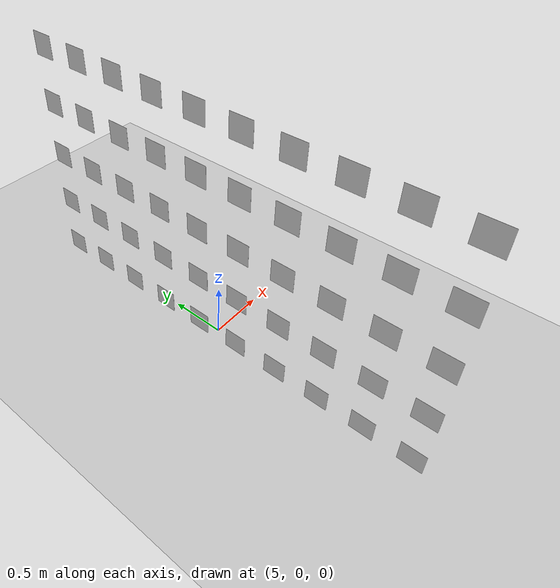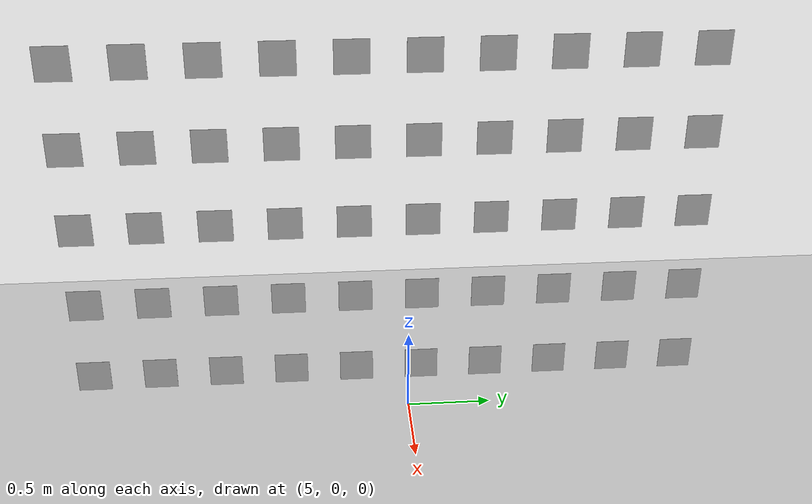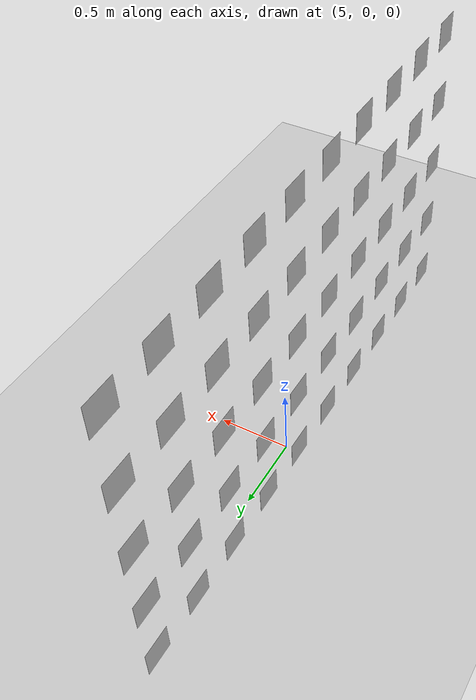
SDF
<sdf version="1.6">
 <world name="default">
  <model name="ground_plane">
   <static>1</static>
   <link name="link">
    <collision name="collision">
     <geometry><plane><normal>0 0 1</normal><size>100 100</size></plane></geometry>
     <surface><friction><ode><mu>100</mu><mu2>50</mu2></ode></friction></surface>
    </collision>
    <visual name="visual">
     <cast_shadows>0</cast_shadows>
     <geometry><plane><normal>0 0 1</normal><size>100 100</size></plane></geometry>
     <material>
      <script><uri>file://media/materials/scripts/gazebo.material</uri><name>Gazebo/Grey</name></script>
     </material>
    </visual>
   </link>
  </model>
  <model name="home1_tag">
   <model name="aruco0">
    <static>1</static>
    <link name="link">
     <pose>0 0 0.1 0 -0 0</pose>
     <collision name="collision"><geometry><box><size>0.2 0.001 0.2</size></box></geometry></collision>
     <visual name="visual">
      <cast_shadows>0</cast_shadows>
      <geometry><box><size>0.2 0.001 0.2</size></box></geometry>
      <material>
       <script>
        <uri>model://aruco0/materials/scripts</uri>
        <uri>model://aruco0/materials/textures</uri>
        <name>vrc/aruco0</name>
       </script>
      </material>
     </visual>
    </link>
    <pose>4.95 -1.8 0.1 0 -0 1.57</pose>
   </model>
   <model name="aruco1">
    <static>1</static>
    <link name="link">
     <pose>0 0 0.1 0 -0 0</pose>
     <collision name="collision"><geometry><box><size>0.2 0.001 0.2</size></box></geometry></collision>
     <visual name="visual">
      <cast_shadows>0</cast_shadows>
      <geometry><box><size>0.2 0.001 0.2</size></box></geometry>
      <material>
       <script>
        <uri>model://aruco1/materials/scripts</uri>
        <uri>model://aruco1/materials/textures</uri>
        <name>vrc/aruco1</name>
       </script>
      </material>
     </visual>
    </link>
    <pose>4.95 -1.4 0.1 0 -0 1.57</pose>
   </model>
   <model name="aruco2">
    <static>1</static>
    <link name="link">
     <pose>0 0 0.1 0 -0 0</pose>
     <collision name="collision"><geometry><box><size>0.2 0.001 0.2</size></box></geometry></collision>
     <visual name="visual">
      <cast_shadows>0</cast_shadows>
      <geometry><box><size>0.2 0.001 0.2</size></box></geometry>
      <material>
       <script>
        <uri>model://aruco2/materials/scripts</uri>
        <uri>model://aruco2/materials/textures</uri>
        <name>vrc/aruco2</name>
       </script>
      </material>
     </visual>
    </link>
    <pose>4.95 -1 0.1 0 -0 1.57</pose>
   </model>
   <model name="aruco3">
    <static>1</static>
    <link name="link">
     <pose>0 0 0.1 0 -0 0</pose>
     <collision name="collision"><geometry><box><size>0.2 0.001 0.2</size></box></geometry></collision>
     <visual name="visual">
      <cast_shadows>0</cast_shadows>
      <geometry><box><size>0.2 0.001 0.2</size></box></geometry>
      <material>
       <script>
        <uri>model://aruco3/materials/scripts</uri>
        <uri>model://aruco3/materials/textures</uri>
        <name>vrc/aruco3</name>
       </script>
      </material>
     </visual>
    </link>
    <pose>4.95 -0.6 0.1 0 -0 1.57</pose>
   </model>
   <model name="aruco4">
    <static>1</static>
    <link name="link">
     <pose>0 0 0.1 0 -0 0</pose>
     <collision name="collision"><geometry><box><size>0.2 0.001 0.2</size></box></geometry></collision>
     <visual name="visual">
      <cast_shadows>0</cast_shadows>
      <geometry><box><size>0.2 0.001 0.2</size></box></geometry>
      <material>
       <script>
        <uri>model://aruco4/materials/scripts</uri>
        <uri>model://aruco4/materials/textures</uri>
        <name>vrc/aruco4</name>
       </script>
      </material>
     </visual>
    </link>
    <pose>4.95 -0.2 0.1 0 -0 1.57</pose>
   </model>
   <model name="aruco5">
    <static>1</static>
    <link name="link">
     <pose>0 0 0.1 0 -0 0</pose>
     <collision name="collision"><geometry><box><size>0.2 0.001 0.2</size></box></geometry></collision>
     <visual name="visual">
      <cast_shadows>0</cast_shadows>
      <geometry><box><size>0.2 0.001 0.2</size></box></geometry>
      <material>
       <script>
        <uri>model://aruco5/materials/scripts</uri>
        <uri>model://aruco5/materials/textures</uri>
        <name>vrc/aruco5</name>
       </script>
      </material>
     </visual>
    </link>
    <pose>4.95 0.2 0.1 0 -0 1.57</pose>
   </model>
   <model name="aruco6">
    <static>1</static>
    <link name="link">
     <pose>0 0 0.1 0 -0 0</pose>
     <collision name="collision"><geometry><box><size>0.2 0.001 0.2</size></box></geometry></collision>
     <visual name="visual">
      <cast_shadows>0</cast_shadows>
      <geometry><box><size>0.2 0.001 0.2</size></box></geometry>
      <material>
       <script>
        <uri>model://aruco6/materials/scripts</uri>
        <uri>model://aruco6/materials/textures</uri>
        <name>vrc/aruco6</name>
       </script>
      </material>
     </visual>
    </link>
    <pose>4.95 0.6 0.1 0 -0 1.57</pose>
   </model>
   <model name="aruco7">
    <static>1</static>
    <link name="link">
     <pose>0 0 0.1 0 -0 0</pose>
     <collision name="collision"><geometry><box><size>0.2 0.001 0.2</size></box></geometry></collision>
     <visual name="visual">
      <cast_shadows>0</cast_shadows>
      <geometry><box><size>0.2 0.001 0.2</size></box></geometry>
      <material>
       <script>
        <uri>model://aruco7/materials/scripts</uri>
        <uri>model://aruco7/materials/textures</uri>
        <name>vrc/aruco7</name>
       </script>
      </material>
     </visual>
    </link>
    <pose>4.95 1 0.1 0 -0 1.57</pose>
   </model>
   <model name="aruco8">
    <static>1</static>
    <link name="link">
     <pose>0 0 0.1 0 -0 0</pose>
     <collision name="collision"><geometry><box><size>0.2 0.001 0.2</size></box></geometry></collision>
     <visual name="visual">
      <cast_shadows>0</cast_shadows>
      <geometry><box><size>0.2 0.001 0.2</size></box></geometry>
      <material>
       <script>
        <uri>model://aruco8/materials/scripts</uri>
        <uri>model://aruco8/materials/textures</uri>
        <name>vrc/aruco8</name>
       </script>
      </material>
     </visual>
    </link>
    <pose>4.95 1.4 0.1 0 -0 1.57</pose>
   </model>
   <model name="aruco9">
    <static>1</static>
    <link name="link">
     <pose>0 0 0.1 0 -0 0</pose>
     <collision name="collision"><geometry><box><size>0.2 0.001 0.2</size></box></geometry></collision>
     <visual name="visual">
      <cast_shadows>0</cast_shadows>
      <geometry><box><size>0.2 0.001 0.2</size></box></geometry>
      <material>
       <script>
        <uri>model://aruco9/materials/scripts</uri>
        <uri>model://aruco9/materials/textures</uri>
        <name>vrc/aruco9</name>
       </script>
      </material>
     </visual>
    </link>
    <pose>4.95 1.8 0.1 0 -0 1.57</pose>
   </model>
   <model name="aruco10">
    <static>1</static>
    <link name="link">
     <pose>0 0 0.1 0 -0 0</pose>
     <collision name="collision"><geometry><box><size>0.2 0.001 0.2</size></box></geometry></collision>
     <visual name="visual">
      <cast_shadows>0</cast_shadows>
      <geometry><box><size>0.2 0.001 0.2</size></box></geometry>
      <material>
       <script>
        <uri>model://aruco10/materials/scripts</uri>
        <uri>model://aruco10/materials/textures</uri>
        <name>vrc/aruco10</name>
       </script>
      </material>
     </visual>
    </link>
    <pose>4.95 -1.8 0.6 0 -0 1.57</pose>
   </model>
   <model name="aruco11">
    <static>1</static>
    <link name="link">
     <pose>0 0 0.1 0 -0 0</pose>
     <collision name="collision"><geometry><box><size>0.2 0.001 0.2</size></box></geometry></collision>
     <visual name="visual">
      <cast_shadows>0</cast_shadows>
      <geometry><box><size>0.2 0.001 0.2</size></box></geometry>
      <material>
       <script>
        <uri>model://aruco11/materials/scripts</uri>
        <uri>model://aruco11/materials/textures</uri>
        <name>vrc/aruco11</name>
       </script>
      </material>
     </visual>
    </link>
    <pose>4.95 -1.4 0.6 0 -0 1.57</pose>
   </model>
   <model name="aruco12">
    <static>1</static>
    <link name="link">
     <pose>0 0 0.1 0 -0 0</pose>
     <collision name="collision"><geometry><box><size>0.2 0.001 0.2</size></box></geometry></collision>
     <visual name="visual">
      <cast_shadows>0</cast_shadows>
      <geometry><box><size>0.2 0.001 0.2</size></box></geometry>
      <material>
       <script>
        <uri>model://aruco12/materials/scripts</uri>
        <uri>model://aruco12/materials/textures</uri>
        <name>vrc/aruco12</name>
       </script>
      </material>
     </visual>
    </link>
    <pose>4.95 -1 0.6 0 -0 1.57</pose>
   </model>
   <model name="aruco13">
    <static>1</static>
    <link name="link">
     <pose>0 0 0.1 0 -0 0</pose>
     <collision name="collision"><geometry><box><size>0.2 0.001 0.2</size></box></geometry></collision>
     <visual name="visual">
      <cast_shadows>0</cast_shadows>
      <geometry><box><size>0.2 0.001 0.2</size></box></geometry>
      <material>
       <script>
        <uri>model://aruco13/materials/scripts</uri>
        <uri>model://aruco13/materials/textures</uri>
        <name>vrc/aruco13</name>
       </script>
      </material>
     </visual>
    </link>
    <pose>4.95 -0.6 0.6 0 -0 1.57</pose>
   </model>
   <model name="aruco14">
    <static>1</static>
    <link name="link">
     <pose>0 0 0.1 0 -0 0</pose>
     <collision name="collision"><geometry><box><size>0.2 0.001 0.2</size></box></geometry></collision>
     <visual name="visual">
      <cast_shadows>0</cast_shadows>
      <geometry><box><size>0.2 0.001 0.2</size></box></geometry>
      <material>
       <script>
        <uri>model://aruco14/materials/scripts</uri>
        <uri>model://aruco14/materials/textures</uri>
        <name>vrc/aruco14</name>
       </script>
      </material>
     </visual>
    </link>
    <pose>4.95 -0.2 0.6 0 -0 1.57</pose>
   </model>
   <model name="aruco15">
    <static>1</static>
    <link name="link">
     <pose>0 0 0.1 0 -0 0</pose>
     <collision name="collision"><geometry><box><size>0.2 0.001 0.2</size></box></geometry></collision>
     <visual name="visual">
      <cast_shadows>0</cast_shadows>
      <geometry><box><size>0.2 0.001 0.2</size></box></geometry>
      <material>
       <script>
        <uri>model://aruco15/materials/scripts</uri>
        <uri>model://aruco15/materials/textures</uri>
        <name>vrc/aruco15</name>
       </script>
      </material>
     </visual>
    </link>
    <pose>4.95 0.2 0.6 0 -0 1.57</pose>
   </model>
   <model name="aruco16">
    <static>1</static>
    <link name="link">
     <pose>0 0 0.1 0 -0 0</pose>
     <collision name="collision"><geometry><box><size>0.2 0.001 0.2</size></box></geometry></collision>
     <visual name="visual">
      <cast_shadows>0</cast_shadows>
      <geometry><box><size>0.2 0.001 0.2</size></box></geometry>
      <material>
       <script>
        <uri>model://aruco16/materials/scripts</uri>
        <uri>model://aruco16/materials/textures</uri>
        <name>vrc/aruco16</name>
       </script>
      </material>
     </visual>
    </link>
    <pose>4.95 0.6 0.6 0 -0 1.57</pose>
   </model>
   <model name="aruco17">
    <static>1</static>
    <link name="link">
     <pose>0 0 0.1 0 -0 0</pose>
     <collision name="collision"><geometry><box><size>0.2 0.001 0.2</size></box></geometry></collision>
     <visual name="visual">
      <cast_shadows>0</cast_shadows>
      <geometry><box><size>0.2 0.001 0.2</size></box></geometry>
      <material>
       <script>
        <uri>model://aruco17/materials/scripts</uri>
        <uri>model://aruco17/materials/textures</uri>
        <name>vrc/aruco17</name>
       </script>
      </material>
     </visual>
    </link>
    <pose>4.95 1 0.6 0 -0 1.57</pose>
   </model>
   <model name="aruco18">
    <static>1</static>
    <link name="link">
     <pose>0 0 0.1 0 -0 0</pose>
     <collision name="collision"><geometry><box><size>0.2 0.001 0.2</size></box></geometry></collision>
     <visual name="visual">
      <cast_shadows>0</cast_shadows>
      <geometry><box><size>0.2 0.001 0.2</size></box></geometry>
      <material>
       <script>
        <uri>model://aruco18/materials/scripts</uri>
        <uri>model://aruco18/materials/textures</uri>
        <name>vrc/aruco18</name>
       </script>
      </material>
     </visual>
    </link>
    <pose>4.95 1.4 0.6 0 -0 1.57</pose>
   </model>
   <model name="aruco19">
    <static>1</static>
    <link name="link">
     <pose>0 0 0.1 0 -0 0</pose>
     <collision name="collision"><geometry><box><size>0.2 0.001 0.2</size></box></geometry></collision>
     <visual name="visual">
      <cast_shadows>0</cast_shadows>
      <geometry><box><size>0.2 0.001 0.2</size></box></geometry>
      <material>
       <script>
        <uri>model://aruco19/materials/scripts</uri>
        <uri>model://aruco19/materials/textures</uri>
        <name>vrc/aruco19</name>
       </script>
      </material>
     </visual>
    </link>
    <pose>4.95 1.8 0.6 0 -0 1.57</pose>
   </model>
   <model name="aruco20">
    <static>1</static>
    <link name="link">
     <pose>0 0 0.1 0 -0 0</pose>
     <collision name="collision"><geometry><box><size>0.2 0.001 0.2</size></box></geometry></collision>
     <visual name="visual">
      <cast_shadows>0</cast_shadows>
      <geometry><box><size>0.2 0.001 0.2</size></box></geometry>
      <material>
       <script>
        <uri>model://aruco20/materials/scripts</uri>
        <uri>model://aruco20/materials/textures</uri>
        <name>vrc/aruco20</name>
       </script>
      </material>
     </visual>
    </link>
    <pose>4.95 -1.8 1.1 0 -0 1.57</pose>
   </model>
   <model name="aruco21">
    <static>1</static>
    <link name="link">
     <pose>0 0 0.1 0 -0 0</pose>
     <collision name="collision"><geometry><box><size>0.2 0.001 0.2</size></box></geometry></collision>
     <visual name="visual">
      <cast_shadows>0</cast_shadows>
      <geometry><box><size>0.2 0.001 0.2</size></box></geometry>
      <material>
       <script>
        <uri>model://aruco21/materials/scripts</uri>
        <uri>model://aruco21/materials/textures</uri>
        <name>vrc/aruco21</name>
       </script>
      </material>
     </visual>
    </link>
    <pose>4.95 -1.4 1.1 0 -0 1.57</pose>
   </model>
   <model name="aruco22">
    <static>1</static>
    <link name="link">
     <pose>0 0 0.1 0 -0 0</pose>
     <collision name="collision"><geometry><box><size>0.2 0.001 0.2</size></box></geometry></collision>
     <visual name="visual">
      <cast_shadows>0</cast_shadows>
      <geometry><box><size>0.2 0.001 0.2</size></box></geometry>
      <material>
       <script>
        <uri>model://aruco22/materials/scripts</uri>
        <uri>model://aruco22/materials/textures</uri>
        <name>vrc/aruco22</name>
       </script>
      </material>
     </visual>
    </link>
    <pose>4.95 -1 1.1 0 -0 1.57</pose>
   </model>
   <model name="aruco23">
    <static>1</static>
    <link name="link">
     <pose>0 0 0.1 0 -0 0</pose>
     <collision name="collision"><geometry><box><size>0.2 0.001 0.2</size></box></geometry></collision>
     <visual name="visual">
      <cast_shadows>0</cast_shadows>
      <geometry><box><size>0.2 0.001 0.2</size></box></geometry>
      <material>
       <script>
        <uri>model://aruco23/materials/scripts</uri>
        <uri>model://aruco23/materials/textures</uri>
        <name>vrc/aruco23</name>
       </script>
      </material>
     </visual>
    </link>
    <pose>4.95 -0.6 1.1 0 -0 1.57</pose>
   </model>
   <model name="aruco24">
    <static>1</static>
    <link name="link">
     <pose>0 0 0.1 0 -0 0</pose>
     <collision name="collision"><geometry><box><size>0.2 0.001 0.2</size></box></geometry></collision>
     <visual name="visual">
      <cast_shadows>0</cast_shadows>
      <geometry><box><size>0.2 0.001 0.2</size></box></geometry>
      <material>
       <script>
        <uri>model://aruco24/materials/scripts</uri>
        <uri>model://aruco24/materials/textures</uri>
        <name>vrc/aruco24</name>
       </script>
      </material>
     </visual>
    </link>
    <pose>4.95 -0.2 1.1 0 -0 1.57</pose>
   </model>
   <model name="aruco25">
    <static>1</static>
    <link name="link">
     <pose>0 0 0.1 0 -0 0</pose>
     <collision name="collision"><geometry><box><size>0.2 0.001 0.2</size></box></geometry></collision>
     <visual name="visual">
      <cast_shadows>0</cast_shadows>
      <geometry><box><size>0.2 0.001 0.2</size></box></geometry>
      <material>
       <script>
        <uri>model://aruco25/materials/scripts</uri>
        <uri>model://aruco25/materials/textures</uri>
        <name>vrc/aruco25</name>
       </script>
      </material>
     </visual>
    </link>
    <pose>4.95 0.2 1.1 0 -0 1.57</pose>
   </model>
   <model name="aruco26">
    <static>1</static>
    <link name="link">
     <pose>0 0 0.1 0 -0 0</pose>
     <collision name="collision"><geometry><box><size>0.2 0.001 0.2</size></box></geometry></collision>
     <visual name="visual">
      <cast_shadows>0</cast_shadows>
      <geometry><box><size>0.2 0.001 0.2</size></box></geometry>
      <material>
       <script>
        <uri>model://aruco26/materials/scripts</uri>
        <uri>model://aruco26/materials/textures</uri>
        <name>vrc/aruco26</name>
       </script>
      </material>
     </visual>
    </link>
    <pose>4.95 0.6 1.1 0 -0 1.57</pose>
   </model>
   <model name="aruco27">
    <static>1</static>
    <link name="link">
     <pose>0 0 0.1 0 -0 0</pose>
     <collision name="collision"><geometry><box><size>0.2 0.001 0.2</size></box></geometry></collision>
     <visual name="visual">
      <cast_shadows>0</cast_shadows>
      <geometry><box><size>0.2 0.001 0.2</size></box></geometry>
      <material>
       <script>
        <uri>model://aruco27/materials/scripts</uri>
        <uri>model://aruco27/materials/textures</uri>
        <name>vrc/aruco27</name>
       </script>
      </material>
     </visual>
    </link>
    <pose>4.95 1 1.1 0 -0 1.57</pose>
   </model>
   <model name="aruco28">
    <static>1</static>
    <link name="link">
     <pose>0 0 0.1 0 -0 0</pose>
     <collision name="collision"><geometry><box><size>0.2 0.001 0.2</size></box></geometry></collision>
     <visual name="visual">
      <cast_shadows>0</cast_shadows>
      <geometry><box><size>0.2 0.001 0.2</size></box></geometry>
      <material>
       <script>
        <uri>model://aruco28/materials/scripts</uri>
        <uri>model://aruco28/materials/textures</uri>
        <name>vrc/aruco28</name>
       </script>
      </material>
     </visual>
    </link>
    <pose>4.95 1.4 1.1 0 -0 1.57</pose>
   </model>
   <model name="aruco29">
    <static>1</static>
    <link name="link">
     <pose>0 0 0.1 0 -0 0</pose>
     <collision name="collision"><geometry><box><size>0.2 0.001 0.2</size></box></geometry></collision>
     <visual name="visual">
      <cast_shadows>0</cast_shadows>
      <geometry><box><size>0.2 0.001 0.2</size></box></geometry>
      <material>
       <script>
        <uri>model://aruco29/materials/scripts</uri>
        <uri>model://aruco29/materials/textures</uri>
        <name>vrc/aruco29</name>
       </script>
      </material>
     </visual>
    </link>
    <pose>4.95 1.8 1.1 0 -0 1.57</pose>
   </model>
   <model name="aruco30">
    <static>1</static>
    <link name="link">
     <pose>0 0 0.1 0 -0 0</pose>
     <collision name="collision"><geometry><box><size>0.2 0.001 0.2</size></box></geometry></collision>
     <visual name="visual">
      <cast_shadows>0</cast_shadows>
      <geometry><box><size>0.2 0.001 0.2</size></box></geometry>
      <material>
       <script>
        <uri>model://aruco30/materials/scripts</uri>
        <uri>model://aruco30/materials/textures</uri>
        <name>vrc/aruco30</name>
       </script>
      </material>
     </visual>
    </link>
    <pose>4.95 -1.8 1.6 0 -0 1.57</pose>
   </model>
   <model name="aruco31">
    <static>1</static>
    <link name="link">
     <pose>0 0 0.1 0 -0 0</pose>
     <collision name="collision"><geometry><box><size>0.2 0.001 0.2</size></box></geometry></collision>
     <visual name="visual">
      <cast_shadows>0</cast_shadows>
      <geometry><box><size>0.2 0.001 0.2</size></box></geometry>
      <material>
       <script>
        <uri>model://aruco31/materials/scripts</uri>
        <uri>model://aruco31/materials/textures</uri>
        <name>vrc/aruco31</name>
       </script>
      </material>
     </visual>
    </link>
    <pose>4.95 -1.4 1.6 0 -0 1.57</pose>
   </model>
   <model name="aruco32">
    <static>1</static>
    <link name="link">
     <pose>0 0 0.1 0 -0 0</pose>
     <collision name="collision"><geometry><box><size>0.2 0.001 0.2</size></box></geometry></collision>
     <visual name="visual">
      <cast_shadows>0</cast_shadows>
      <geometry><box><size>0.2 0.001 0.2</size></box></geometry>
      <material>
       <script>
        <uri>model://aruco32/materials/scripts</uri>
        <uri>model://aruco32/materials/textures</uri>
        <name>vrc/aruco32</name>
       </script>
      </material>
     </visual>
    </link>
    <pose>4.95 -1 1.6 0 -0 1.57</pose>
   </model>
   <model name="aruco33">
    <static>1</static>
    <link name="link">
     <pose>0 0 0.1 0 -0 0</pose>
     <collision name="collision"><geometry><box><size>0.2 0.001 0.2</size></box></geometry></collision>
     <visual name="visual">
      <cast_shadows>0</cast_shadows>
      <geometry><box><size>0.2 0.001 0.2</size></box></geometry>
      <material>
       <script>
        <uri>model://aruco33/materials/scripts</uri>
        <uri>model://aruco33/materials/textures</uri>
        <name>vrc/aruco33</name>
       </script>
      </material>
     </visual>
    </link>
    <pose>4.95 -0.6 1.6 0 -0 1.57</pose>
   </model>
   <model name="aruco34">
    <static>1</static>
    <link name="link">
     <pose>0 0 0.1 0 -0 0</pose>
     <collision name="collision"><geometry><box><size>0.2 0.001 0.2</size></box></geometry></collision>
     <visual name="visual">
      <cast_shadows>0</cast_shadows>
      <geometry><box><size>0.2 0.001 0.2</size></box></geometry>
      <material>
       <script>
        <uri>model://aruco34/materials/scripts</uri>
        <uri>model://aruco34/materials/textures</uri>
        <name>vrc/aruco34</name>
       </script>
      </material>
     </visual>
    </link>
    <pose>4.95 -0.2 1.6 0 -0 1.57</pose>
   </model>
   <model name="aruco35">
    <static>1</static>
    <link name="link">
     <pose>0 0 0.1 0 -0 0</pose>
     <collision name="collision"><geometry><box><size>0.2 0.001 0.2</size></box></geometry></collision>
     <visual name="visual">
      <cast_shadows>0</cast_shadows>
      <geometry><box><size>0.2 0.001 0.2</size></box></geometry>
      <material>
       <script>
        <uri>model://aruco35/materials/scripts</uri>
        <uri>model://aruco35/materials/textures</uri>
        <name>vrc/aruco35</name>
       </script>
      </material>
     </visual>
    </link>
    <pose>4.95 0.2 1.6 0 -0 1.57</pose>
   </model>
   <model name="aruco36">
    <static>1</static>
    <link name="link">
     <pose>0 0 0.1 0 -0 0</pose>
     <collision name="collision"><geometry><box><size>0.2 0.001 0.2</size></box></geometry></collision>
     <visual name="visual">
      <cast_shadows>0</cast_shadows>
      <geometry><box><size>0.2 0.001 0.2</size></box></geometry>
      <material>
       <script>
        <uri>model://aruco36/materials/scripts</uri>
        <uri>model://aruco36/materials/textures</uri>
        <name>vrc/aruco36</name>
       </script>
      </material>
     </visual>
    </link>
    <pose>4.95 0.6 1.6 0 -0 1.57</pose>
   </model>
   <model name="aruco37">
    <static>1</static>
    <link name="link">
     <pose>0 0 0.1 0 -0 0</pose>
     <collision name="collision"><geometry><box><size>0.2 0.001 0.2</size></box></geometry></collision>
     <visual name="visual">
      <cast_shadows>0</cast_shadows>
      <geometry><box><size>0.2 0.001 0.2</size></box></geometry>
      <material>
       <script>
        <uri>model://aruco37/materials/scripts</uri>
        <uri>model://aruco37/materials/textures</uri>
        <name>vrc/aruco37</name>
       </script>
      </material>
     </visual>
    </link>
    <pose>4.95 1 1.6 0 -0 1.57</pose>
   </model>
   <model name="aruco38">
    <static>1</static>
    <link name="link">
     <pose>0 0 0.1 0 -0 0</pose>
     <collision name="collision"><geometry><box><size>0.2 0.001 0.2</size></box></geometry></collision>
     <visual name="visual">
      <cast_shadows>0</cast_shadows>
      <geometry><box><size>0.2 0.001 0.2</size></box></geometry>
      <material>
       <script>
        <uri>model://aruco38/materials/scripts</uri>
        <uri>model://aruco38/materials/textures</uri>
        <name>vrc/aruco38</name>
       </script>
      </material>
     </visual>
    </link>
    <pose>4.95 1.4 1.6 0 -0 1.57</pose>
   </model>
   <model name="aruco39">
    <static>1</static>
    <link name="link">
     <pose>0 0 0.1 0 -0 0</pose>
     <collision name="collision"><geometry><box><size>0.2 0.001 0.2</size></box></geometry></collision>
     <visual name="visual">
      <cast_shadows>0</cast_shadows>
      <geometry><box><size>0.2 0.001 0.2</size></box></geometry>
      <material>
       <script>
        <uri>model://aruco39/materials/scripts</uri>
        <uri>model://aruco39/materials/textures</uri>
        <name>vrc/aruco39</name>
       </script>
      </material>
     </visual>
    </link>
    <pose>4.95 1.8 1.6 0 -0 1.57</pose>
   </model>
   <model name="aruco40">
    <static>1</static>
    <link name="link">
     <pose>0 0 0.1 0 -0 0</pose>
     <collision name="collision"><geometry><box><size>0.2 0.001 0.2</size></box></geometry></collision>
     <visual name="visual">
      <cast_shadows>0</cast_shadows>
      <geometry><box><size>0.2 0.001 0.2</size></box></geometry>
      <material>
       <script>
        <uri>model://aruco40/materials/scripts</uri>
        <uri>model://aruco40/materials/textures</uri>
        <name>vrc/aruco40</name>
       </script>
      </material>
     </visual>
    </link>
    <pose>4.95 -1.8 2.1 0 -0 1.57</pose>
   </model>
   <model name="aruco41">
    <static>1</static>
    <link name="link">
     <pose>0 0 0.1 0 -0 0</pose>
     <collision name="collision"><geometry><box><size>0.2 0.001 0.2</size></box></geometry></collision>
     <visual name="visual">
      <cast_shadows>0</cast_shadows>
      <geometry><box><size>0.2 0.001 0.2</size></box></geometry>
      <material>
       <script>
        <uri>model://aruco41/materials/scripts</uri>
        <uri>model://aruco41/materials/textures</uri>
        <name>vrc/aruco41</name>
       </script>
      </material>
     </visual>
    </link>
    <pose>4.95 -1.4 2.1 0 -0 1.57</pose>
   </model>
   <model name="aruco42">
    <static>1</static>
    <link name="link">
     <pose>0 0 0.1 0 -0 0</pose>
     <collision name="collision"><geometry><box><size>0.2 0.001 0.2</size></box></geometry></collision>
     <visual name="visual">
      <cast_shadows>0</cast_shadows>
      <geometry><box><size>0.2 0.001 0.2</size></box></geometry>
      <material>
       <script>
        <uri>model://aruco42/materials/scripts</uri>
        <uri>model://aruco42/materials/textures</uri>
        <name>vrc/aruco42</name>
       </script>
      </material>
     </visual>
    </link>
    <pose>4.95 -1 2.1 0 -0 1.57</pose>
   </model>
   <model name="aruco43">
    <static>1</static>
    <link name="link">
     <pose>0 0 0.1 0 -0 0</pose>
     <collision name="collision"><geometry><box><size>0.2 0.001 0.2</size></box></geometry></collision>
     <visual name="visual">
      <cast_shadows>0</cast_shadows>
      <geometry><box><size>0.2 0.001 0.2</size></box></geometry>
      <material>
       <script>
        <uri>model://aruco43/materials/scripts</uri>
        <uri>model://aruco43/materials/textures</uri>
        <name>vrc/aruco43</name>
       </script>
      </material>
     </visual>
    </link>
    <pose>4.95 -0.6 2.1 0 -0 1.57</pose>
   </model>
   <model name="aruco44">
    <static>1</static>
    <link name="link">
     <pose>0 0 0.1 0 -0 0</pose>
     <collision name="collision"><geometry><box><size>0.2 0.001 0.2</size></box></geometry></collision>
     <visual name="visual">
      <cast_shadows>0</cast_shadows>
      <geometry><box><size>0.2 0.001 0.2</size></box></geometry>
      <material>
       <script>
        <uri>model://aruco44/materials/scripts</uri>
        <uri>model://aruco44/materials/textures</uri>
        <name>vrc/aruco44</name>
       </script>
      </material>
     </visual>
    </link>
    <pose>4.95 -0.2 2.1 0 -0 1.57</pose>
   </model>
   <model name="aruco45">
    <static>1</static>
    <link name="link">
     <pose>0 0 0.1 0 -0 0</pose>
     <collision name="collision"><geometry><box><size>0.2 0.001 0.2</size></box></geometry></collision>
     <visual name="visual">
      <cast_shadows>0</cast_shadows>
      <geometry><box><size>0.2 0.001 0.2</size></box></geometry>
      <material>
       <script>
        <uri>model://aruco45/materials/scripts</uri>
        <uri>model://aruco45/materials/textures</uri>
        <name>vrc/aruco45</name>
       </script>
      </material>
     </visual>
    </link>
    <pose>4.95 0.2 2.1 0 -0 1.57</pose>
   </model>
   <model name="aruco46">
    <static>1</static>
    <link name="link">
     <pose>0 0 0.1 0 -0 0</pose>
     <collision name="collision"><geometry><box><size>0.2 0.001 0.2</size></box></geometry></collision>
     <visual name="visual">
      <cast_shadows>0</cast_shadows>
      <geometry><box><size>0.2 0.001 0.2</size></box></geometry>
      <material>
       <script>
        <uri>model://aruco46/materials/scripts</uri>
        <uri>model://aruco46/materials/textures</uri>
        <name>vrc/aruco46</name>
       </script>
      </material>
     </visual>
    </link>
    <pose>4.95 0.6 2.1 0 -0 1.57</pose>
   </model>
   <model name="aruco47">
    <static>1</static>
    <link name="link">
     <pose>0 0 0.1 0 -0 0</pose>
     <collision name="collision"><geometry><box><size>0.2 0.001 0.2</size></box></geometry></collision>
     <visual name="visual">
      <cast_shadows>0</cast_shadows>
      <geometry><box><size>0.2 0.001 0.2</size></box></geometry>
      <material>
       <script>
        <uri>model://aruco47/materials/scripts</uri>
        <uri>model://aruco47/materials/textures</uri>
        <name>vrc/aruco47</name>
       </script>
      </material>
     </visual>
    </link>
    <pose>4.95 1 2.1 0 -0 1.57</pose>
   </model>
   <model name="aruco48">
    <static>1</static>
    <link name="link">
     <pose>0 0 0.1 0 -0 0</pose>
     <collision name="collision"><geometry><box><size>0.2 0.001 0.2</size></box></geometry></collision>
     <visual name="visual">
      <cast_shadows>0</cast_shadows>
      <geometry><box><size>0.2 0.001 0.2</size></box></geometry>
      <material>
       <script>
        <uri>model://aruco48/materials/scripts</uri>
        <uri>model://aruco48/materials/textures</uri>
        <name>vrc/aruco48</name>
       </script>
      </material>
     </visual>
    </link>
    <pose>4.95 1.4 2.1 0 -0 1.57</pose>
   </model>
   <model name="aruco49">
    <static>1</static>
    <link name="link">
     <pose>0 0 0.1 0 -0 0</pose>
     <collision name="collision"><geometry><box><size>0.2 0.001 0.2</size></box></geometry></collision>
     <visual name="visual">
      <cast_shadows>0</cast_shadows>
      <geometry><box><size>0.2 0.001 0.2</size></box></geometry>
      <material>
       <script>
        <uri>model://aruco49/materials/scripts</uri>
        <uri>model://aruco49/materials/textures</uri>
        <name>vrc/aruco49</name>
       </script>
      </material>
     </visual>
    </link>
    <pose>4.95 1.8 2.1 0 -0 1.57</pose>
   </model>
   <static>0</static>
   <pose>-0.100901 -0.109509 0 0 -0 0</pose>
  </model>
 </world>
</sdf>
